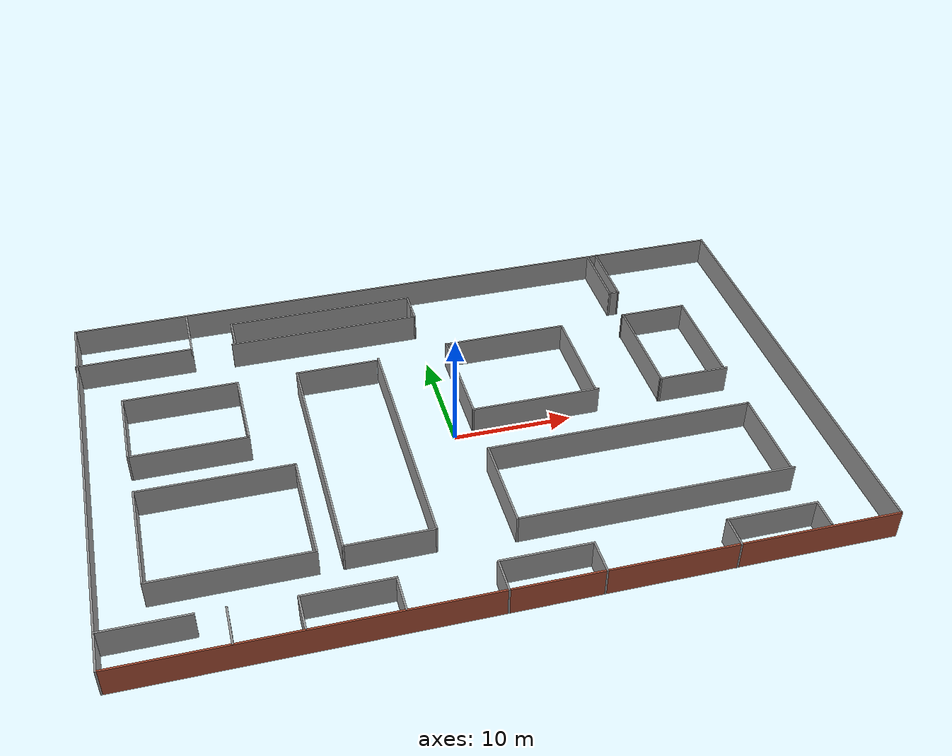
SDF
<?xml version='1.0'?>
<sdf version='1.7'>
  <model name='map_mir'>
    <pose>-0.059737 -0.001041 0 0 -0 0</pose>
    <link name='Wall_0'>
      <collision name='Wall_0_Collision'>
        <geometry>
          <box>
            <size>59.65 0.15 2.495</size>
          </box>
        </geometry>
        <pose>0 0 1.2475 0 -0 0</pose>
      </collision>
      <visual name='Wall_0_Visual'>
        <pose>0 0 1.2475 0 -0 0</pose>
        <geometry>
          <box>
            <size>59.65 0.15 2.495</size>
          </box>
        </geometry>
        <material>
          <script>
            <uri>file://media/materials/scripts/gazebo.material</uri>
            <name>Gazebo/Grey</name>
          </script>
          <ambient>1 1 1 1</ambient>
        </material>
        <meta>
          <layer>0</layer>
        </meta>
      </visual>
      <pose>0.059737 19.301 0 0 -0 0</pose>
    </link>
    <link name='Wall_1'>
      <collision name='Wall_1_Collision'>
        <geometry>
          <box>
            <size>38.75 0.15 2.5</size>
          </box>
        </geometry>
        <pose>0 0 1.25 0 -0 0</pose>
      </collision>
      <visual name='Wall_1_Visual'>
        <pose>0 0 1.25 0 -0 0</pose>
        <geometry>
          <box>
            <size>38.75 0.15 2.5</size>
          </box>
        </geometry>
        <material>
          <script>
            <uri>file://media/materials/scripts/gazebo.material</uri>
            <name>Gazebo/Grey</name>
          </script>
          <ambient>1 1 1 1</ambient>
        </material>
        <meta>
          <layer>0</layer>
        </meta>
      </visual>
      <pose>29.8097 0.001041 0 0 -0 -1.5708</pose>
    </link>
    <link name='Wall_2'>
      <collision name='Wall_2_Collision'>
        <geometry>
          <box>
            <size>59.65 0.15 2.5</size>
          </box>
        </geometry>
        <pose>0 0 1.25 0 -0 0</pose>
      </collision>
      <visual name='Wall_2_Visual'>
        <pose>0 0 1.25 0 -0 0</pose>
        <geometry>
          <box>
            <size>59.65 0.15 2.5</size>
          </box>
        </geometry>
        <material>
          <script>
            <uri>file://media/materials/scripts/gazebo.material</uri>
            <name>Gazebo/Bricks</name>
          </script>
          <ambient>1 0.764706 0.305882 1</ambient>
        </material>
        <meta>
          <layer>0</layer>
        </meta>
      </visual>
      <pose>0.059737 -19.299 0 0 -0 3.14159</pose>
    </link>
    <link name='Wall_25'>
      <collision name='Wall_25_Collision'>
        <geometry>
          <box>
            <size>6.32102 0.15 2.5</size>
          </box>
        </geometry>
        <pose>0 0 1.25 0 -0 0</pose>
      </collision>
      <visual name='Wall_25_Visual'>
        <pose>0 0 1.25 0 -0 0</pose>
        <geometry>
          <box>
            <size>6.32102 0.15 2.5</size>
          </box>
        </geometry>
        <material>
          <script>
            <uri>file://media/materials/scripts/gazebo.material</uri>
            <name>Gazebo/Grey</name>
          </script>
          <ambient>1 1 1 1</ambient>
        </material>
        <meta>
          <layer>0</layer>
        </meta>
      </visual>
      <pose>18.1409 16.1479 0 0 -0 -1.5708</pose>
    </link>
    <link name='Wall_26'>
      <collision name='Wall_26_Collision'>
        <geometry>
          <box>
            <size>0.971132 0.15 2.5</size>
          </box>
        </geometry>
        <pose>0 0 1.25 0 -0 0</pose>
      </collision>
      <visual name='Wall_26_Visual'>
        <pose>0 0 1.25 0 -0 0</pose>
        <geometry>
          <box>
            <size>0.971132 0.15 2.5</size>
          </box>
        </geometry>
        <material>
          <script>
            <uri>file://media/materials/scripts/gazebo.material</uri>
            <name>Gazebo/Grey</name>
          </script>
          <ambient>1 1 1 1</ambient>
        </material>
        <meta>
          <layer>0</layer>
        </meta>
      </visual>
      <pose>18.5514 13.1096 0 0 -0 -0.015213</pose>
    </link>
    <link name='Wall_27'>
      <collision name='Wall_27_Collision'>
        <geometry>
          <box>
            <size>6.25 0.15 2.5</size>
          </box>
        </geometry>
        <pose>0 0 1.25 0 -0 0</pose>
      </collision>
      <visual name='Wall_27_Visual'>
        <pose>0 0 1.25 0 -0 0</pose>
        <geometry>
          <box>
            <size>6.25 0.15 2.5</size>
          </box>
        </geometry>
        <material>
          <script>
            <uri>file://media/materials/scripts/gazebo.material</uri>
            <name>Gazebo/Grey</name>
          </script>
          <ambient>1 1 1 1</ambient>
        </material>
        <meta>
          <layer>0</layer>
        </meta>
      </visual>
      <pose>18.9619 16.1534 0 0 -0 1.5708</pose>
    </link>
    <link name='Wall_29'>
      <collision name='Wall_29_Collision'>
        <geometry>
          <box>
            <size>7 0.15 2.5</size>
          </box>
        </geometry>
        <pose>0 0 1.25 0 -0 0</pose>
      </collision>
      <visual name='Wall_29_Visual'>
        <pose>0 0 1.25 0 -0 0</pose>
        <geometry>
          <box>
            <size>7 0.15 2.5</size>
          </box>
        </geometry>
        <material>
          <script>
            <uri>file://media/materials/scripts/gazebo.material</uri>
            <name>Gazebo/Grey</name>
          </script>
          <ambient>1 1 1 1</ambient>
        </material>
        <meta>
          <layer>0</layer>
        </meta>
      </visual>
      <pose>-26.2691 -15.915 0 0 -0 0</pose>
    </link>
    <link name='Wall_3'>
      <collision name='Wall_3_Collision'>
        <geometry>
          <box>
            <size>38.75 0.15 2.5</size>
          </box>
        </geometry>
        <pose>0 0 1.25 0 -0 0</pose>
      </collision>
      <visual name='Wall_3_Visual'>
        <pose>0 0 1.25 0 -0 0</pose>
        <geometry>
          <box>
            <size>38.75 0.15 2.5</size>
          </box>
        </geometry>
        <material>
          <script>
            <uri>file://media/materials/scripts/gazebo.material</uri>
            <name>Gazebo/Grey</name>
          </script>
          <ambient>1 1 1 1</ambient>
        </material>
        <meta>
          <layer>0</layer>
        </meta>
      </visual>
      <pose>-29.6903 0.001041 0 0 -0 1.5708</pose>
    </link>
    <link name='Wall_31'>
      <collision name='Wall_31_Collision'>
        <geometry>
          <box>
            <size>3.5 0.15 2.5</size>
          </box>
        </geometry>
        <pose>0 0 1.25 0 -0 0</pose>
      </collision>
      <visual name='Wall_31_Visual'>
        <pose>0 0 1.25 0 -0 0</pose>
        <geometry>
          <box>
            <size>3.5 0.15 2.5</size>
          </box>
        </geometry>
        <material>
          <script>
            <uri>file://media/materials/scripts/gazebo.material</uri>
            <name>Gazebo/Grey</name>
          </script>
          <ambient>1 1 1 1</ambient>
        </material>
        <meta>
          <layer>0</layer>
        </meta>
      </visual>
      <pose>-20.547 -17.59 0 0 -0 -1.5708</pose>
    </link>
    <link name='Wall_34'>
      <collision name='Wall_34_Collision'>
        <geometry>
          <box>
            <size>3.25 0.15 2.5</size>
          </box>
        </geometry>
        <pose>0 0 1.25 0 -0 0</pose>
      </collision>
      <visual name='Wall_34_Visual'>
        <pose>0 0 1.25 0 -0 0</pose>
        <geometry>
          <box>
            <size>3.25 0.15 2.5</size>
          </box>
        </geometry>
        <material>
          <script>
            <uri>file://media/materials/scripts/gazebo.material</uri>
            <name>Gazebo/Grey</name>
          </script>
          <ambient>1 1 1 1</ambient>
        </material>
        <meta>
          <layer>0</layer>
        </meta>
      </visual>
      <pose>-15.5189 -17.6988 0 0 -0 1.5708</pose>
    </link>
    <link name='Wall_35'>
      <collision name='Wall_35_Collision'>
        <geometry>
          <box>
            <size>7.25 0.15 2.5</size>
          </box>
        </geometry>
        <pose>0 0 1.25 0 -0 0</pose>
      </collision>
      <visual name='Wall_35_Visual'>
        <pose>0 0 1.25 0 -0 0</pose>
        <geometry>
          <box>
            <size>7.25 0.15 2.5</size>
          </box>
        </geometry>
        <material>
          <script>
            <uri>file://media/materials/scripts/gazebo.material</uri>
            <name>Gazebo/Grey</name>
          </script>
          <ambient>1 1 1 1</ambient>
        </material>
        <meta>
          <layer>0</layer>
        </meta>
      </visual>
      <pose>-11.9689 -16.1488 0 0 -0 0</pose>
    </link>
    <link name='Wall_36'>
      <collision name='Wall_36_Collision'>
        <geometry>
          <box>
            <size>3.25 0.15 2.5</size>
          </box>
        </geometry>
        <pose>0 0 1.25 0 -0 0</pose>
      </collision>
      <visual name='Wall_36_Visual'>
        <pose>0 0 1.25 0 -0 0</pose>
        <geometry>
          <box>
            <size>3.25 0.15 2.5</size>
          </box>
        </geometry>
        <material>
          <script>
            <uri>file://media/materials/scripts/gazebo.material</uri>
            <name>Gazebo/Grey</name>
          </script>
          <ambient>1 1 1 1</ambient>
        </material>
        <meta>
          <layer>0</layer>
        </meta>
      </visual>
      <pose>-8.41885 -17.6988 0 0 -0 -1.5708</pose>
    </link>
    <link name='Wall_38'>
      <collision name='Wall_38_Collision'>
        <geometry>
          <box>
            <size>3 0.15 2.5</size>
          </box>
        </geometry>
        <pose>0 0 1.25 0 -0 0</pose>
      </collision>
      <visual name='Wall_38_Visual'>
        <pose>0 0 1.25 0 -0 0</pose>
        <geometry>
          <box>
            <size>3 0.15 2.5</size>
          </box>
        </geometry>
        <material>
          <script>
            <uri>file://media/materials/scripts/gazebo.material</uri>
            <name>Gazebo/Grey</name>
          </script>
          <ambient>1 1 1 1</ambient>
        </material>
        <meta>
          <layer>0</layer>
        </meta>
      </visual>
      <pose>-0.962037 -17.876 0 0 -0 1.5708</pose>
    </link>
    <link name='Wall_39'>
      <collision name='Wall_39_Collision'>
        <geometry>
          <box>
            <size>7.5 0.15 2.5</size>
          </box>
        </geometry>
        <pose>0 0 1.25 0 -0 0</pose>
      </collision>
      <visual name='Wall_39_Visual'>
        <pose>0 0 1.25 0 -0 0</pose>
        <geometry>
          <box>
            <size>7.5 0.15 2.5</size>
          </box>
        </geometry>
        <material>
          <script>
            <uri>file://media/materials/scripts/gazebo.material</uri>
            <name>Gazebo/Grey</name>
          </script>
          <ambient>1 1 1 1</ambient>
        </material>
        <meta>
          <layer>0</layer>
        </meta>
      </visual>
      <pose>2.71296 -16.451 0 0 -0 0</pose>
    </link>
    <link name='Wall_40'>
      <collision name='Wall_40_Collision'>
        <geometry>
          <box>
            <size>3 0.15 2.5</size>
          </box>
        </geometry>
        <pose>0 0 1.25 0 -0 0</pose>
      </collision>
      <visual name='Wall_40_Visual'>
        <pose>0 0 1.25 0 -0 0</pose>
        <geometry>
          <box>
            <size>3 0.15 2.5</size>
          </box>
        </geometry>
        <material>
          <script>
            <uri>file://media/materials/scripts/gazebo.material</uri>
            <name>Gazebo/Grey</name>
          </script>
          <ambient>1 1 1 1</ambient>
        </material>
        <meta>
          <layer>0</layer>
        </meta>
      </visual>
      <pose>6.38796 -17.876 0 0 -0 -1.5708</pose>
    </link>
    <link name='Wall_42'>
      <collision name='Wall_42_Collision'>
        <geometry>
          <box>
            <size>2.75 0.15 2.5</size>
          </box>
        </geometry>
        <pose>0 0 1.25 0 -0 0</pose>
      </collision>
      <visual name='Wall_42_Visual'>
        <pose>0 0 1.25 0 -0 0</pose>
        <geometry>
          <box>
            <size>2.75 0.15 2.5</size>
          </box>
        </geometry>
        <material>
          <script>
            <uri>file://media/materials/scripts/gazebo.material</uri>
            <name>Gazebo/Grey</name>
          </script>
          <ambient>1 1 1 1</ambient>
        </material>
        <meta>
          <layer>0</layer>
        </meta>
      </visual>
      <pose>16.8174 -18.001 0 0 -0 1.5708</pose>
    </link>
    <link name='Wall_43'>
      <collision name='Wall_43_Collision'>
        <geometry>
          <box>
            <size>7.5 0.15 2.5</size>
          </box>
        </geometry>
        <pose>0 0 1.25 0 -0 0</pose>
      </collision>
      <visual name='Wall_43_Visual'>
        <pose>0 0 1.25 0 -0 0</pose>
        <geometry>
          <box>
            <size>7.5 0.15 2.5</size>
          </box>
        </geometry>
        <material>
          <script>
            <uri>file://media/materials/scripts/gazebo.material</uri>
            <name>Gazebo/Grey</name>
          </script>
          <ambient>1 1 1 1</ambient>
        </material>
        <meta>
          <layer>0</layer>
        </meta>
      </visual>
      <pose>20.4924 -16.701 0 0 -0 0</pose>
    </link>
    <link name='Wall_44'>
      <collision name='Wall_44_Collision'>
        <geometry>
          <box>
            <size>2.5 0.15 2.5</size>
          </box>
        </geometry>
        <pose>0 0 1.25 0 -0 0</pose>
      </collision>
      <visual name='Wall_44_Visual'>
        <pose>0 0 1.25 0 -0 0</pose>
        <geometry>
          <box>
            <size>2.5 0.15 2.5</size>
          </box>
        </geometry>
        <material>
          <script>
            <uri>file://media/materials/scripts/gazebo.material</uri>
            <name>Gazebo/Grey</name>
          </script>
          <ambient>1 1 1 1</ambient>
        </material>
        <meta>
          <layer>0</layer>
        </meta>
      </visual>
      <pose>24.1674 -17.876 0 0 -0 -1.5708</pose>
    </link>
    <link name='Wall_46'>
      <collision name='Wall_46_Collision'>
        <geometry>
          <box>
            <size>22.75 0.15 2.5</size>
          </box>
        </geometry>
        <pose>0 0 1.25 0 -0 0</pose>
      </collision>
      <visual name='Wall_46_Visual'>
        <pose>0 0 1.25 0 -0 0</pose>
        <geometry>
          <box>
            <size>22.75 0.15 2.5</size>
          </box>
        </geometry>
        <material>
          <script>
            <uri>file://media/materials/scripts/gazebo.material</uri>
            <name>Gazebo/Grey</name>
          </script>
          <ambient>1 1 1 1</ambient>
        </material>
        <meta>
          <layer>0</layer>
        </meta>
      </visual>
      <pose>12.91 -12.6571 0 0 -0 3.14159</pose>
    </link>
    <link name='Wall_47'>
      <collision name='Wall_47_Collision'>
        <geometry>
          <box>
            <size>8.25 0.15 2.5</size>
          </box>
        </geometry>
        <pose>0 0 1.25 0 -0 0</pose>
      </collision>
      <visual name='Wall_47_Visual'>
        <pose>0 0 1.25 0 -0 0</pose>
        <geometry>
          <box>
            <size>8.25 0.15 2.5</size>
          </box>
        </geometry>
        <material>
          <script>
            <uri>file://media/materials/scripts/gazebo.material</uri>
            <name>Gazebo/Grey</name>
          </script>
          <ambient>1 1 1 1</ambient>
        </material>
        <meta>
          <layer>0</layer>
        </meta>
      </visual>
      <pose>1.60996 -8.60713 0 0 -0 1.5708</pose>
    </link>
    <link name='Wall_48'>
      <collision name='Wall_48_Collision'>
        <geometry>
          <box>
            <size>22.5 0.15 2.5</size>
          </box>
        </geometry>
        <pose>0 0 1.25 0 -0 0</pose>
      </collision>
      <visual name='Wall_48_Visual'>
        <pose>0 0 1.25 0 -0 0</pose>
        <geometry>
          <box>
            <size>22.5 0.15 2.5</size>
          </box>
        </geometry>
        <material>
          <script>
            <uri>file://media/materials/scripts/gazebo.material</uri>
            <name>Gazebo/Grey</name>
          </script>
          <ambient>1 1 1 1</ambient>
        </material>
        <meta>
          <layer>0</layer>
        </meta>
      </visual>
      <pose>12.785 -4.55713 0 0 -0 0</pose>
    </link>
    <link name='Wall_49'>
      <collision name='Wall_49_Collision'>
        <geometry>
          <box>
            <size>8.25 0.15 2.5</size>
          </box>
        </geometry>
        <pose>0 0 1.25 0 -0 0</pose>
      </collision>
      <visual name='Wall_49_Visual'>
        <pose>0 0 1.25 0 -0 0</pose>
        <geometry>
          <box>
            <size>8.25 0.15 2.5</size>
          </box>
        </geometry>
        <material>
          <script>
            <uri>file://media/materials/scripts/gazebo.material</uri>
            <name>Gazebo/Grey</name>
          </script>
          <ambient>1 1 1 1</ambient>
        </material>
        <meta>
          <layer>0</layer>
        </meta>
      </visual>
      <pose>23.96 -8.60713 0 0 -0 -1.5708</pose>
    </link>
    <link name='Wall_51'>
      <collision name='Wall_51_Collision'>
        <geometry>
          <box>
            <size>6.15512 0.15 2.5</size>
          </box>
        </geometry>
        <pose>0 0 1.25 0 -0 0</pose>
      </collision>
      <visual name='Wall_51_Visual'>
        <pose>0 0 1.25 0 -0 0</pose>
        <geometry>
          <box>
            <size>6.15512 0.15 2.5</size>
          </box>
        </geometry>
        <material>
          <script>
            <uri>file://media/materials/scripts/gazebo.material</uri>
            <name>Gazebo/Grey</name>
          </script>
          <ambient>1 1 1 1</ambient>
        </material>
        <meta>
          <layer>0</layer>
        </meta>
      </visual>
      <pose>21.1138 0.256385 0 0 -0 3.14159</pose>
    </link>
    <link name='Wall_52'>
      <collision name='Wall_52_Collision'>
        <geometry>
          <box>
            <size>9.5 0.15 2.5</size>
          </box>
        </geometry>
        <pose>0 0 1.25 0 -0 0</pose>
      </collision>
      <visual name='Wall_52_Visual'>
        <pose>0 0 1.25 0 -0 0</pose>
        <geometry>
          <box>
            <size>9.5 0.15 2.5</size>
          </box>
        </geometry>
        <material>
          <script>
            <uri>file://media/materials/scripts/gazebo.material</uri>
            <name>Gazebo/Grey</name>
          </script>
          <ambient>1 1 1 1</ambient>
        </material>
        <meta>
          <layer>0</layer>
        </meta>
      </visual>
      <pose>18.182 4.93138 0 0 -0 1.5708</pose>
    </link>
    <link name='Wall_53'>
      <collision name='Wall_53_Collision'>
        <geometry>
          <box>
            <size>5.90512 0.15 2.5</size>
          </box>
        </geometry>
        <pose>0 0 1.25 0 -0 0</pose>
      </collision>
      <visual name='Wall_53_Visual'>
        <pose>0 0 1.25 0 -0 0</pose>
        <geometry>
          <box>
            <size>5.90512 0.15 2.5</size>
          </box>
        </geometry>
        <material>
          <script>
            <uri>file://media/materials/scripts/gazebo.material</uri>
            <name>Gazebo/Grey</name>
          </script>
          <ambient>1 1 1 1</ambient>
        </material>
        <meta>
          <layer>0</layer>
        </meta>
      </visual>
      <pose>20.9888 9.60638 0 0 -0 0</pose>
    </link>
    <link name='Wall_54'>
      <collision name='Wall_54_Collision'>
        <geometry>
          <box>
            <size>9.25 0.15 2.5</size>
          </box>
        </geometry>
        <pose>0 0 1.25 0 -0 0</pose>
      </collision>
      <visual name='Wall_54_Visual'>
        <pose>0 0 1.25 0 -0 0</pose>
        <geometry>
          <box>
            <size>9.25 0.15 2.5</size>
          </box>
        </geometry>
        <material>
          <script>
            <uri>file://media/materials/scripts/gazebo.material</uri>
            <name>Gazebo/Grey</name>
          </script>
          <ambient>1 1 1 1</ambient>
        </material>
        <meta>
          <layer>0</layer>
        </meta>
      </visual>
      <pose>23.8664 5.05638 0 0 -0 -1.5708</pose>
    </link>
    <link name='Wall_56'>
      <collision name='Wall_56_Collision'>
        <geometry>
          <box>
            <size>11 0.15 2.5</size>
          </box>
        </geometry>
        <pose>0 0 1.25 0 -0 0</pose>
      </collision>
      <visual name='Wall_56_Visual'>
        <pose>0 0 1.25 0 -0 0</pose>
        <geometry>
          <box>
            <size>11 0.15 2.5</size>
          </box>
        </geometry>
        <material>
          <script>
            <uri>file://media/materials/scripts/gazebo.material</uri>
            <name>Gazebo/Grey</name>
          </script>
          <ambient>1 1 1 1</ambient>
        </material>
        <meta>
          <layer>0</layer>
        </meta>
      </visual>
      <pose>7.123 0.333271 0 0 -0 3.14159</pose>
    </link>
    <link name='Wall_57'>
      <collision name='Wall_57_Collision'>
        <geometry>
          <box>
            <size>9.25 0.15 2.5</size>
          </box>
        </geometry>
        <pose>0 0 1.25 0 -0 0</pose>
      </collision>
      <visual name='Wall_57_Visual'>
        <pose>0 0 1.25 0 -0 0</pose>
        <geometry>
          <box>
            <size>9.25 0.15 2.5</size>
          </box>
        </geometry>
        <material>
          <script>
            <uri>file://media/materials/scripts/gazebo.material</uri>
            <name>Gazebo/Grey</name>
          </script>
          <ambient>1 1 1 1</ambient>
        </material>
        <meta>
          <layer>0</layer>
        </meta>
      </visual>
      <pose>1.698 4.88327 0 0 -0 1.5708</pose>
    </link>
    <link name='Wall_58'>
      <collision name='Wall_58_Collision'>
        <geometry>
          <box>
            <size>10.75 0.15 2.5</size>
          </box>
        </geometry>
        <pose>0 0 1.25 0 -0 0</pose>
      </collision>
      <visual name='Wall_58_Visual'>
        <pose>0 0 1.25 0 -0 0</pose>
        <geometry>
          <box>
            <size>10.75 0.15 2.5</size>
          </box>
        </geometry>
        <material>
          <script>
            <uri>file://media/materials/scripts/gazebo.material</uri>
            <name>Gazebo/Grey</name>
          </script>
          <ambient>1 1 1 1</ambient>
        </material>
        <meta>
          <layer>0</layer>
        </meta>
      </visual>
      <pose>6.998 9.43327 0 0 -0 0</pose>
    </link>
    <link name='Wall_59'>
      <collision name='Wall_59_Collision'>
        <geometry>
          <box>
            <size>9.25 0.15 2.5</size>
          </box>
        </geometry>
        <pose>0 0 1.25 0 -0 0</pose>
      </collision>
      <visual name='Wall_59_Visual'>
        <pose>0 0 1.25 0 -0 0</pose>
        <geometry>
          <box>
            <size>9.25 0.15 2.5</size>
          </box>
        </geometry>
        <material>
          <script>
            <uri>file://media/materials/scripts/gazebo.material</uri>
            <name>Gazebo/Grey</name>
          </script>
          <ambient>1 1 1 1</ambient>
        </material>
        <meta>
          <layer>0</layer>
        </meta>
      </visual>
      <pose>12.298 4.88327 0 0 -0 -1.5708</pose>
    </link>
    <link name='Wall_61'>
      <collision name='Wall_61_Collision'>
        <geometry>
          <box>
            <size>21.25 0.15 2.5</size>
          </box>
        </geometry>
        <pose>0 0 1.25 0 -0 0</pose>
      </collision>
      <visual name='Wall_61_Visual'>
        <pose>0 0 1.25 0 -0 0</pose>
        <geometry>
          <box>
            <size>21.25 0.15 2.5</size>
          </box>
        </geometry>
        <material>
          <script>
            <uri>file://media/materials/scripts/gazebo.material</uri>
            <name>Gazebo/Grey</name>
          </script>
          <ambient>1 1 1 1</ambient>
        </material>
        <meta>
          <layer>0</layer>
        </meta>
      </visual>
      <pose>-4.49862 -1.60853 0 0 -0 -1.5708</pose>
    </link>
    <link name='Wall_62'>
      <collision name='Wall_62_Collision'>
        <geometry>
          <box>
            <size>7.25 0.15 2.5</size>
          </box>
        </geometry>
        <pose>0 0 1.25 0 -0 0</pose>
      </collision>
      <visual name='Wall_62_Visual'>
        <pose>0 0 1.25 0 -0 0</pose>
        <geometry>
          <box>
            <size>7.25 0.15 2.5</size>
          </box>
        </geometry>
        <material>
          <script>
            <uri>file://media/materials/scripts/gazebo.material</uri>
            <name>Gazebo/Grey</name>
          </script>
          <ambient>1 1 1 1</ambient>
        </material>
        <meta>
          <layer>0</layer>
        </meta>
      </visual>
      <pose>-8.04862 -12.1585 0 0 -0 3.14159</pose>
    </link>
    <link name='Wall_63'>
      <collision name='Wall_63_Collision'>
        <geometry>
          <box>
            <size>21 0.15 2.5</size>
          </box>
        </geometry>
        <pose>0 0 1.25 0 -0 0</pose>
      </collision>
      <visual name='Wall_63_Visual'>
        <pose>0 0 1.25 0 -0 0</pose>
        <geometry>
          <box>
            <size>21 0.15 2.5</size>
          </box>
        </geometry>
        <material>
          <script>
            <uri>file://media/materials/scripts/gazebo.material</uri>
            <name>Gazebo/Grey</name>
          </script>
          <ambient>1 1 1 1</ambient>
        </material>
        <meta>
          <layer>0</layer>
        </meta>
      </visual>
      <pose>-11.5986 -1.73353 0 0 -0 1.5708</pose>
    </link>
    <link name='Wall_64'>
      <collision name='Wall_64_Collision'>
        <geometry>
          <box>
            <size>7 0.15 2.5</size>
          </box>
        </geometry>
        <pose>0 0 1.25 0 -0 0</pose>
      </collision>
      <visual name='Wall_64_Visual'>
        <pose>0 0 1.25 0 -0 0</pose>
        <geometry>
          <box>
            <size>7 0.15 2.5</size>
          </box>
        </geometry>
        <material>
          <script>
            <uri>file://media/materials/scripts/gazebo.material</uri>
            <name>Gazebo/Grey</name>
          </script>
          <ambient>1 1 1 1</ambient>
        </material>
        <meta>
          <layer>0</layer>
        </meta>
      </visual>
      <pose>-8.17362 8.69147 0 0 -0 0</pose>
    </link>
    <link name='Wall_66'>
      <collision name='Wall_66_Collision'>
        <geometry>
          <box>
            <size>9.75 0.15 2.5</size>
          </box>
        </geometry>
        <pose>0 0 1.25 0 -0 0</pose>
      </collision>
      <visual name='Wall_66_Visual'>
        <pose>0 0 1.25 0 -0 0</pose>
        <geometry>
          <box>
            <size>9.75 0.15 2.5</size>
          </box>
        </geometry>
        <material>
          <script>
            <uri>file://media/materials/scripts/gazebo.material</uri>
            <name>Gazebo/Grey</name>
          </script>
          <ambient>1 1 1 1</ambient>
        </material>
        <meta>
          <layer>0</layer>
        </meta>
      </visual>
      <pose>-21.4538 8.66626 0 0 -0 0</pose>
    </link>
    <link name='Wall_67'>
      <collision name='Wall_67_Collision'>
        <geometry>
          <box>
            <size>7.25 0.15 2.5</size>
          </box>
        </geometry>
        <pose>0 0 1.25 0 -0 0</pose>
      </collision>
      <visual name='Wall_67_Visual'>
        <pose>0 0 1.25 0 -0 0</pose>
        <geometry>
          <box>
            <size>7.25 0.15 2.5</size>
          </box>
        </geometry>
        <material>
          <script>
            <uri>file://media/materials/scripts/gazebo.material</uri>
            <name>Gazebo/Grey</name>
          </script>
          <ambient>1 1 1 1</ambient>
        </material>
        <meta>
          <layer>0</layer>
        </meta>
      </visual>
      <pose>-16.6538 5.11626 0 0 -0 -1.5708</pose>
    </link>
    <link name='Wall_68'>
      <collision name='Wall_68_Collision'>
        <geometry>
          <box>
            <size>9.75 0.15 2.5</size>
          </box>
        </geometry>
        <pose>0 0 1.25 0 -0 0</pose>
      </collision>
      <visual name='Wall_68_Visual'>
        <pose>0 0 1.25 0 -0 0</pose>
        <geometry>
          <box>
            <size>9.75 0.15 2.5</size>
          </box>
        </geometry>
        <material>
          <script>
            <uri>file://media/materials/scripts/gazebo.material</uri>
            <name>Gazebo/Grey</name>
          </script>
          <ambient>1 1 1 1</ambient>
        </material>
        <meta>
          <layer>0</layer>
        </meta>
      </visual>
      <pose>-21.4538 1.56626 0 0 -0 3.14159</pose>
    </link>
    <link name='Wall_69'>
      <collision name='Wall_69_Collision'>
        <geometry>
          <box>
            <size>7.25 0.15 2.5</size>
          </box>
        </geometry>
        <pose>0 0 1.25 0 -0 0</pose>
      </collision>
      <visual name='Wall_69_Visual'>
        <pose>0 0 1.25 0 -0 0</pose>
        <geometry>
          <box>
            <size>7.25 0.15 2.5</size>
          </box>
        </geometry>
        <material>
          <script>
            <uri>file://media/materials/scripts/gazebo.material</uri>
            <name>Gazebo/Grey</name>
          </script>
          <ambient>1 1 1 1</ambient>
        </material>
        <meta>
          <layer>0</layer>
        </meta>
      </visual>
      <pose>-26.2538 5.11626 0 0 -0 1.5708</pose>
    </link>
    <link name='Wall_71'>
      <collision name='Wall_71_Collision'>
        <geometry>
          <box>
            <size>10 0.15 2.5</size>
          </box>
        </geometry>
        <pose>0 0 1.25 0 -0 0</pose>
      </collision>
      <visual name='Wall_71_Visual'>
        <pose>0 0 1.25 0 -0 0</pose>
        <geometry>
          <box>
            <size>10 0.15 2.5</size>
          </box>
        </geometry>
        <material>
          <script>
            <uri>file://media/materials/scripts/gazebo.material</uri>
            <name>Gazebo/Grey</name>
          </script>
          <ambient>1 1 1 1</ambient>
        </material>
        <meta>
          <layer>0</layer>
        </meta>
      </visual>
      <pose>-24.8847 14.2808 0 0 -0 0</pose>
    </link>
    <link name='Wall_72'>
      <collision name='Wall_72_Collision'>
        <geometry>
          <box>
            <size>5 0.15 2.5</size>
          </box>
        </geometry>
        <pose>0 0 1.25 0 -0 0</pose>
      </collision>
      <visual name='Wall_72_Visual'>
        <pose>0 0 1.25 0 -0 0</pose>
        <geometry>
          <box>
            <size>5 0.15 2.5</size>
          </box>
        </geometry>
        <material>
          <script>
            <uri>file://media/materials/scripts/gazebo.material</uri>
            <name>Gazebo/Grey</name>
          </script>
          <ambient>1 1 1 1</ambient>
        </material>
        <meta>
          <layer>0</layer>
        </meta>
      </visual>
      <pose>-19.9597 16.7058 0 0 -0 1.5708</pose>
    </link>
    <link name='Wall_76'>
      <collision name='Wall_76_Collision'>
        <geometry>
          <box>
            <size>16.5 0.15 2.5</size>
          </box>
        </geometry>
        <pose>0 0 1.25 0 -0 0</pose>
      </collision>
      <visual name='Wall_76_Visual'>
        <pose>0 0 1.25 0 -0 0</pose>
        <geometry>
          <box>
            <size>16.5 0.15 2.5</size>
          </box>
        </geometry>
        <material>
          <script>
            <uri>file://media/materials/scripts/gazebo.material</uri>
            <name>Gazebo/Grey</name>
          </script>
          <ambient>1 1 1 1</ambient>
        </material>
        <meta>
          <layer>0</layer>
        </meta>
      </visual>
      <pose>-8.24205 14.1046 0 0 -0 0</pose>
    </link>
    <link name='Wall_77'>
      <collision name='Wall_77_Collision'>
        <geometry>
          <box>
            <size>1.5 0.15 2.5</size>
          </box>
        </geometry>
        <pose>0 0 1.25 0 -0 0</pose>
      </collision>
      <visual name='Wall_77_Visual'>
        <pose>0 0 1.25 0 -0 0</pose>
        <geometry>
          <box>
            <size>1.5 0.15 2.5</size>
          </box>
        </geometry>
        <material>
          <script>
            <uri>file://media/materials/scripts/gazebo.material</uri>
            <name>Gazebo/Grey</name>
          </script>
          <ambient>1 1 1 1</ambient>
        </material>
        <meta>
          <layer>0</layer>
        </meta>
      </visual>
      <pose>-0.06705 14.7796 0 0 -0 1.5708</pose>
    </link>
    <link name='Wall_78'>
      <collision name='Wall_78_Collision'>
        <geometry>
          <box>
            <size>1.75 0.15 2.5</size>
          </box>
        </geometry>
        <pose>0 0 1.25 0 -0 0</pose>
      </collision>
      <visual name='Wall_78_Visual'>
        <pose>0 0 1.25 0 -0 0</pose>
        <geometry>
          <box>
            <size>1.75 0.15 2.5</size>
          </box>
        </geometry>
        <material>
          <script>
            <uri>file://media/materials/scripts/gazebo.material</uri>
            <name>Gazebo/Grey</name>
          </script>
          <ambient>1 1 1 1</ambient>
        </material>
        <meta>
          <layer>0</layer>
        </meta>
      </visual>
      <pose>-0.06705 16.2546 0 0 -0 1.5708</pose>
    </link>
    <link name='Wall_79'>
      <collision name='Wall_79_Collision'>
        <geometry>
          <box>
            <size>16.25 0.15 2.5</size>
          </box>
        </geometry>
        <pose>0 0 1.25 0 -0 0</pose>
      </collision>
      <visual name='Wall_79_Visual'>
        <pose>0 0 1.25 0 -0 0</pose>
        <geometry>
          <box>
            <size>16.25 0.15 2.5</size>
          </box>
        </geometry>
        <material>
          <script>
            <uri>file://media/materials/scripts/gazebo.material</uri>
            <name>Gazebo/Grey</name>
          </script>
          <ambient>1 1 1 1</ambient>
        </material>
        <meta>
          <layer>0</layer>
        </meta>
      </visual>
      <pose>-8.11705 17.0546 0 0 -0 3.14159</pose>
    </link>
    <link name='Wall_80'>
      <collision name='Wall_80_Collision'>
        <geometry>
          <box>
            <size>3 0.15 2.5</size>
          </box>
        </geometry>
        <pose>0 0 1.25 0 -0 0</pose>
      </collision>
      <visual name='Wall_80_Visual'>
        <pose>0 0 1.25 0 -0 0</pose>
        <geometry>
          <box>
            <size>3 0.15 2.5</size>
          </box>
        </geometry>
        <material>
          <script>
            <uri>file://media/materials/scripts/gazebo.material</uri>
            <name>Gazebo/Grey</name>
          </script>
          <ambient>1 1 1 1</ambient>
        </material>
        <meta>
          <layer>0</layer>
        </meta>
      </visual>
      <pose>-16.167 15.6296 0 0 -0 -1.5708</pose>
    </link>
    <link name='Wall_82'>
      <collision name='Wall_82_Collision'>
        <geometry>
          <box>
            <size>9.75 0.15 2.5</size>
          </box>
        </geometry>
        <pose>0 0 1.25 0 -0 0</pose>
      </collision>
      <visual name='Wall_82_Visual'>
        <pose>0 0 1.25 0 -0 0</pose>
        <geometry>
          <box>
            <size>9.75 0.15 2.5</size>
          </box>
        </geometry>
        <material>
          <script>
            <uri>file://media/materials/scripts/gazebo.material</uri>
            <name>Gazebo/Grey</name>
          </script>
          <ambient>1 1 1 1</ambient>
        </material>
        <meta>
          <layer>0</layer>
        </meta>
      </visual>
      <pose>-26.1218 -7.36119 0 0 -0 -1.5708</pose>
    </link>
    <link name='Wall_83'>
      <collision name='Wall_83_Collision'>
        <geometry>
          <box>
            <size>12.75 0.15 2.5</size>
          </box>
        </geometry>
        <pose>0 0 1.25 0 -0 0</pose>
      </collision>
      <visual name='Wall_83_Visual'>
        <pose>0 0 1.25 0 -0 0</pose>
        <geometry>
          <box>
            <size>12.75 0.15 2.5</size>
          </box>
        </geometry>
        <material>
          <script>
            <uri>file://media/materials/scripts/gazebo.material</uri>
            <name>Gazebo/Grey</name>
          </script>
          <ambient>1 1 1 1</ambient>
        </material>
        <meta>
          <layer>0</layer>
        </meta>
      </visual>
      <pose>-19.8218 -12.1612 0 0 -0 0</pose>
    </link>
    <link name='Wall_84'>
      <collision name='Wall_84_Collision'>
        <geometry>
          <box>
            <size>9.75 0.15 2.5</size>
          </box>
        </geometry>
        <pose>0 0 1.25 0 -0 0</pose>
      </collision>
      <visual name='Wall_84_Visual'>
        <pose>0 0 1.25 0 -0 0</pose>
        <geometry>
          <box>
            <size>9.75 0.15 2.5</size>
          </box>
        </geometry>
        <material>
          <script>
            <uri>file://media/materials/scripts/gazebo.material</uri>
            <name>Gazebo/Grey</name>
          </script>
          <ambient>1 1 1 1</ambient>
        </material>
        <meta>
          <layer>0</layer>
        </meta>
      </visual>
      <pose>-13.5218 -7.36119 0 0 -0 1.5708</pose>
    </link>
    <link name='Wall_85'>
      <collision name='Wall_85_Collision'>
        <geometry>
          <box>
            <size>12.75 0.15 2.5</size>
          </box>
        </geometry>
        <pose>0 0 1.25 0 -0 0</pose>
      </collision>
      <visual name='Wall_85_Visual'>
        <pose>0 0 1.25 0 -0 0</pose>
        <geometry>
          <box>
            <size>12.75 0.15 2.5</size>
          </box>
        </geometry>
        <material>
          <script>
            <uri>file://media/materials/scripts/gazebo.material</uri>
            <name>Gazebo/Grey</name>
          </script>
          <ambient>1 1 1 1</ambient>
        </material>
        <meta>
          <layer>0</layer>
        </meta>
      </visual>
      <pose>-19.8218 -2.56119 0 0 -0 3.14159</pose>
    </link>
    <static>1</static>
  </model>
</sdf>
